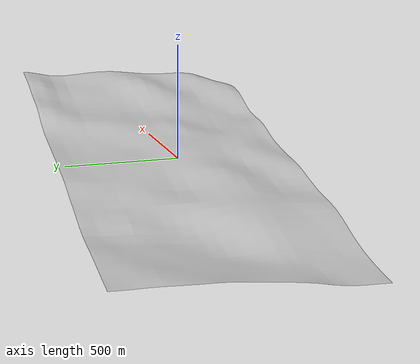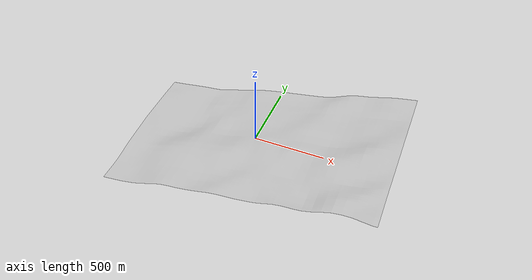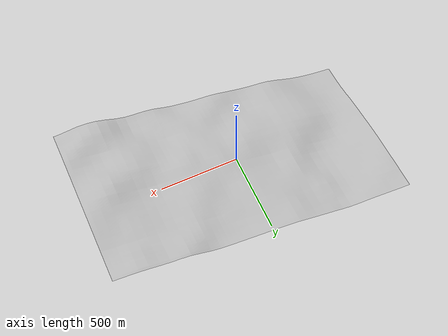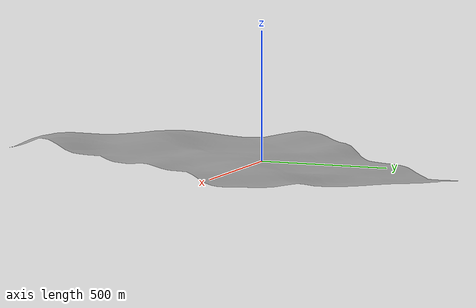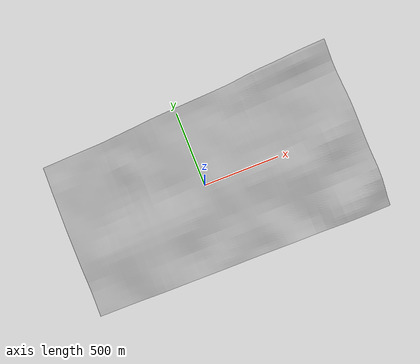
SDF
<?xml version="1.0" ?>
<sdf version="1.4">
  <model name="l4">
	<static>true</static>
	<link name="link">
    <pose>0 0 -68.4 0 0 0</pose>
	    <collision name="my_collision">
		<geometry>
                   <mesh><uri>model://l4/untitled.dae</uri></mesh>
		 </geometry>
	    </collision>

	    <visual name="my_visual">
		<geometry>
                   <mesh><uri>model://l4/untitled.dae</uri></mesh>
		 </geometry>
	    </visual>
	</link>
</model>
</sdf>
